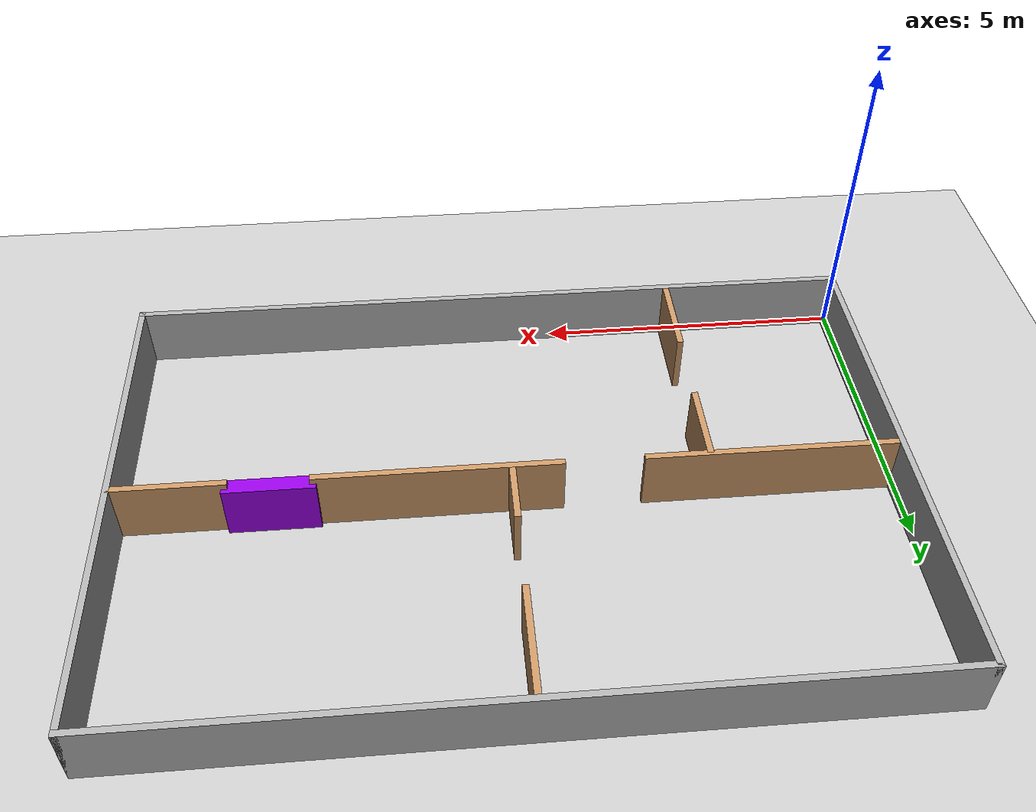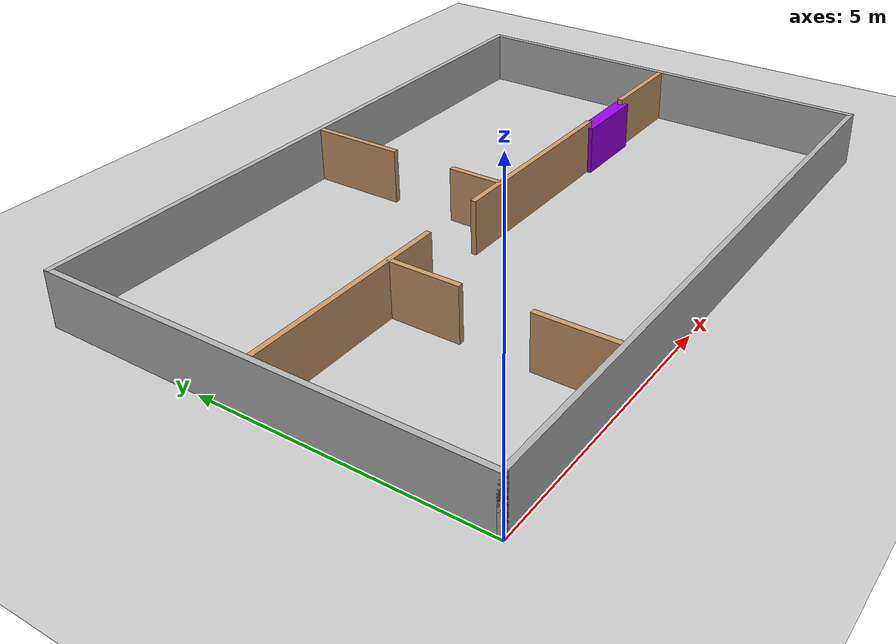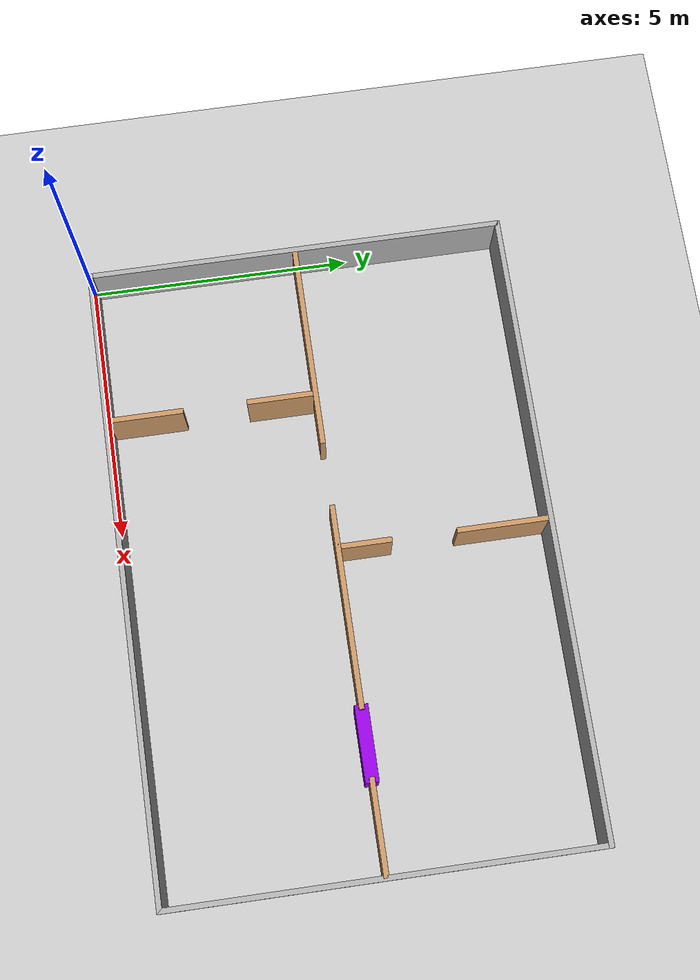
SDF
<?xml version="1.0" ?>
<sdf version="1.7">
  <world name="house_dynamic">
    <gravity>0 0 -9.8</gravity>
    <include><uri>model://ground_plane</uri></include>
    <include><uri>model://sun</uri></include>

    <!-- Outer boundary walls (12 m x 8 m) -->
    <model name="box_0"><static>true</static><pose>6.000 0.050 0.500 0 0 0</pose><link name="link"><collision name="collision"><geometry><box><size>12.000 0.100 1.000</size></box></geometry></collision><visual name="visual"><geometry><box><size>12.000 0.100 1.000</size></box></geometry><material><ambient>0.7 0.7 0.7 1</ambient><diffuse>0.7 0.7 0.7 1</diffuse></material></visual></link></model>
    <model name="box_1"><static>true</static><pose>6.000 7.950 0.500 0 0 0</pose><link name="link"><collision name="collision"><geometry><box><size>12.000 0.100 1.000</size></box></geometry></collision><visual name="visual"><geometry><box><size>12.000 0.100 1.000</size></box></geometry><material><ambient>0.7 0.7 0.7 1</ambient><diffuse>0.7 0.7 0.7 1</diffuse></material></visual></link></model>
    <model name="box_2"><static>true</static><pose>0.050 4.000 0.500 0 0 0</pose><link name="link"><collision name="collision"><geometry><box><size>0.100 8.000 1.000</size></box></geometry></collision><visual name="visual"><geometry><box><size>0.100 8.000 1.000</size></box></geometry><material><ambient>0.7 0.7 0.7 1</ambient><diffuse>0.7 0.7 0.7 1</diffuse></material></visual></link></model>
    <model name="box_3"><static>true</static><pose>11.950 4.000 0.500 0 0 0</pose><link name="link"><collision name="collision"><geometry><box><size>0.100 8.000 1.000</size></box></geometry></collision><visual name="visual"><geometry><box><size>0.100 8.000 1.000</size></box></geometry><material><ambient>0.7 0.7 0.7 1</ambient><diffuse>0.7 0.7 0.7 1</diffuse></material></visual></link></model>

    <!-- Horizontal interior wall at y=4
         Original door gap:  x=[4.0,  5.2]  (1.2 m) — gets BLOCKED at t=10 s
         Purple door gap:    x=[9.0, 10.2]  (1.2 m) — gets OPENED  at t=10 s -->
    <!-- Left segment   x=[0.1, 4.0] -->
    <model name="box_4"><static>true</static><pose>2.050 4.000 0.500 0 0 0</pose><link name="link"><collision name="collision"><geometry><box><size>3.900 0.100 1.000</size></box></geometry></collision><visual name="visual"><geometry><box><size>3.900 0.100 1.000</size></box></geometry><material><ambient>0.8 0.6 0.4 1</ambient><diffuse>0.8 0.6 0.4 1</diffuse></material></visual></link></model>
    <!-- Middle segment  x=[5.2, 9.0] -->
    <model name="box_5"><static>true</static><pose>7.100 4.000 0.500 0 0 0</pose><link name="link"><collision name="collision"><geometry><box><size>3.800 0.100 1.000</size></box></geometry></collision><visual name="visual"><geometry><box><size>3.800 0.100 1.000</size></box></geometry><material><ambient>0.8 0.6 0.4 1</ambient><diffuse>0.8 0.6 0.4 1</diffuse></material></visual></link></model>
    <!-- Right segment   x=[10.2, 11.95] -->
    <model name="box_5b"><static>true</static><pose>11.075 4.000 0.500 0 0 0</pose><link name="link"><collision name="collision"><geometry><box><size>1.750 0.100 1.000</size></box></geometry></collision><visual name="visual"><geometry><box><size>1.750 0.100 1.000</size></box></geometry><material><ambient>0.8 0.6 0.4 1</ambient><diffuse>0.8 0.6 0.4 1</diffuse></material></visual></link></model>

    <!-- Vertical interior wall at x=3, y=[0.1,4], door gap at y=[1.5, 2.7] -->
    <model name="box_6"><static>true</static><pose>3.000 0.800 0.500 0 0 0</pose><link name="link"><collision name="collision"><geometry><box><size>0.100 1.400 1.000</size></box></geometry></collision><visual name="visual"><geometry><box><size>0.100 1.400 1.000</size></box></geometry><material><ambient>0.8 0.6 0.4 1</ambient><diffuse>0.8 0.6 0.4 1</diffuse></material></visual></link></model>
    <model name="box_7"><static>true</static><pose>3.000 3.350 0.500 0 0 0</pose><link name="link"><collision name="collision"><geometry><box><size>0.100 1.300 1.000</size></box></geometry></collision><visual name="visual"><geometry><box><size>0.100 1.300 1.000</size></box></geometry><material><ambient>0.8 0.6 0.4 1</ambient><diffuse>0.8 0.6 0.4 1</diffuse></material></visual></link></model>

    <!-- Vertical interior wall at x=6, y=[4,8], door gap at y=[5.0, 6.2] -->
    <model name="box_8"><static>true</static><pose>6.000 4.500 0.500 0 0 0</pose><link name="link"><collision name="collision"><geometry><box><size>0.100 1.000 1.000</size></box></geometry></collision><visual name="visual"><geometry><box><size>0.100 1.000 1.000</size></box></geometry><material><ambient>0.8 0.6 0.4 1</ambient><diffuse>0.8 0.6 0.4 1</diffuse></material></visual></link></model>
    <model name="box_9"><static>true</static><pose>6.000 7.075 0.500 0 0 0</pose><link name="link"><collision name="collision"><geometry><box><size>0.100 1.750 1.000</size></box></geometry></collision><visual name="visual"><geometry><box><size>0.100 1.750 1.000</size></box></geometry><material><ambient>0.8 0.6 0.4 1</ambient><diffuse>0.8 0.6 0.4 1</diffuse></material></visual></link></model>

    <!-- purple_door (PURPLE): static blocker, present from start.
         Deleted at t=10 s by the commander node via /delete_entity. -->
    <model name="purple_door">
      <static>true</static>
      <pose>9.600 4.000 0.450 0 0 1.5707963</pose>
      <link name="body">
        <collision name="col"><geometry><box><size>0.25 1.40 0.90</size></box></geometry></collision>
        <visual    name="vis"><geometry><box><size>0.25 1.40 0.90</size></box></geometry>
          <material><ambient>0.6 0.0 0.9 1</ambient><diffuse>0.6 0.0 0.9 1</diffuse></material>
        </visual>
      </link>
    </model>

  </world>
</sdf>
